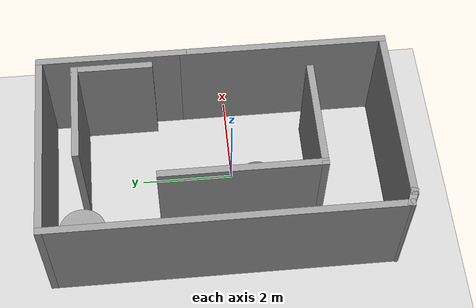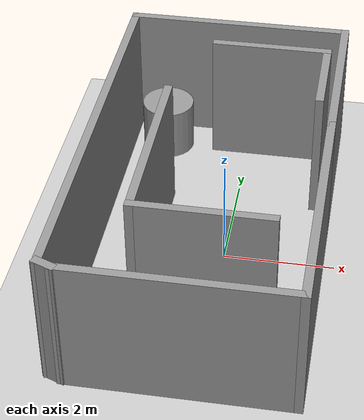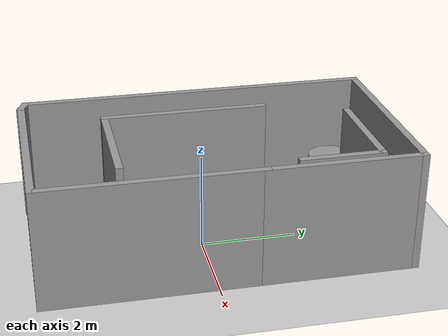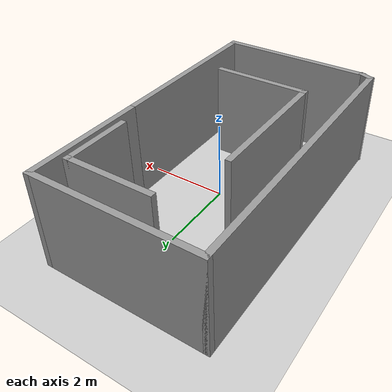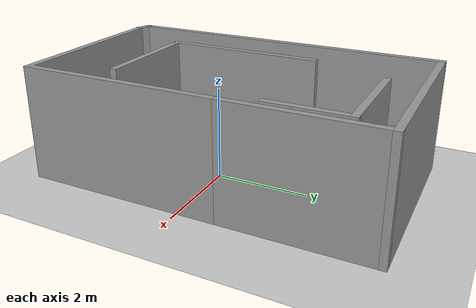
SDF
<sdf version="1.7">
 <world name="default">
  <light name="sun" type="directional">
   <pose>0 0 10 0 -0 0</pose>
   <diffuse>0.8 0.8 0.8 1</diffuse>
   <specular>0.2 0.2 0.2 1</specular>
   <attenuation>
    <range>1000</range>
    <constant>0.9</constant>
    <linear>0.01</linear>
    <quadratic>0.001</quadratic>
   </attenuation>
   <direction>-0.5 0.1 -0.9</direction>
   <spot><inner_angle>0</inner_angle><outer_angle>0</outer_angle><falloff>0</falloff></spot>
  </light>
  <model name="ground_plane">
   <static>1</static>
   <link name="link">
    <collision name="collision">
     <geometry><plane><normal>0 0 1</normal><size>100 100</size></plane></geometry>
     <surface>
      <contact><collide_bitmask>65535</collide_bitmask></contact>
      <friction><ode><mu>100</mu><mu2>50</mu2></ode></friction>
     </surface>
    </collision>
    <visual name="visual">
     <cast_shadows>0</cast_shadows>
     <geometry><plane><normal>0 0 1</normal><size>100 100</size></plane></geometry>
     <material>
      <script><uri>file://media/materials/scripts/gazebo.material</uri><name>Gazebo/Grey</name></script>
     </material>
    </visual>
   </link>
  </model>
  <gravity>0 0 -9.8</gravity>
  <magnetic_field>6e-06 2.3e-05 -4.2e-05</magnetic_field>
  <atmosphere type="adiabatic"/>
  <physics type="ode">
   <max_step_size>0.001</max_step_size>
   <real_time_factor>1</real_time_factor>
   <real_time_update_rate>1000</real_time_update_rate>
  </physics>
  <scene><ambient>0.4 0.4 0.4 1</ambient><background>0.7 0.7 0.7 1</background><shadows>1</shadows></scene>
  <audio><device>default</device></audio>
  <spherical_coordinates>
   <surface_model>EARTH_WGS84</surface_model>
   <latitude_deg>0</latitude_deg>
   <longitude_deg>0</longitude_deg>
   <elevation>0</elevation>
   <heading_deg>0</heading_deg>
  </spherical_coordinates>
  <model name="maze">
   <pose>-0.331245 0.273755 0 0 -0 0</pose>
   <link name="Wall_11">
    <collision name="Wall_11_Collision">
     <geometry><box><size>2.25 0.15 2.5</size></box></geometry>
     <pose>0 0 1.25 0 -0 0</pose>
    </collision>
    <visual name="Wall_11_Visual">
     <pose>0 0 1.25 0 -0 0</pose>
     <geometry><box><size>2.25 0.15 2.5</size></box></geometry>
     <material>
      <script><uri>file://media/materials/scripts/gazebo.material</uri><name>Gazebo/Grey</name></script>
      <ambient>1 1 1 1</ambient>
     </material>
     <meta><layer>0</layer></meta>
    </visual>
    <pose>0.739689 2.99063 0 0 -0 0</pose>
   </link>
   <link name="Wall_12">
    <collision name="Wall_12_Collision">
     <geometry><box><size>1.75 0.15 2.5</size></box></geometry>
     <pose>0 0 1.25 0 -0 0</pose>
    </collision>
    <visual name="Wall_12_Visual">
     <pose>0 0 1.25 0 -0 0</pose>
     <geometry><box><size>1.75 0.15 2.5</size></box></geometry>
     <material>
      <script><uri>file://media/materials/scripts/gazebo.material</uri><name>Gazebo/Grey</name></script>
      <ambient>1 1 1 1</ambient>
     </material>
     <meta><layer>0</layer></meta>
    </visual>
    <pose>1.78969 2.19063 0 0 -0 -1.5708</pose>
   </link>
   <link name="Wall_14">
    <collision name="Wall_14_Collision">
     <geometry><box><size>2.5 0.15 2.5</size></box></geometry>
     <pose>0 0 1.25 0 -0 0</pose>
    </collision>
    <visual name="Wall_14_Visual">
     <pose>0 0 1.25 0 -0 0</pose>
     <geometry><box><size>2.5 0.15 2.5</size></box></geometry>
     <material>
      <script><uri>file://media/materials/scripts/gazebo.material</uri><name>Gazebo/Grey</name></script>
      <ambient>1 1 1 1</ambient>
     </material>
     <meta><layer>0</layer></meta>
    </visual>
    <pose>0.226354 -2.05184 0 0 -0 3.14159</pose>
   </link>
   <link name="Wall_15">
    <collision name="Wall_15_Collision">
     <geometry><box><size>3.5 0.15 2.5</size></box></geometry>
     <pose>0 0 1.25 0 -0 0</pose>
    </collision>
    <visual name="Wall_15_Visual">
     <pose>0 0 1.25 0 -0 0</pose>
     <geometry><box><size>3.5 0.15 2.5</size></box></geometry>
     <material>
      <script><uri>file://media/materials/scripts/gazebo.material</uri><name>Gazebo/Grey</name></script>
      <ambient>1 1 1 1</ambient>
     </material>
     <meta><layer>0</layer></meta>
    </visual>
    <pose>-0.948646 -0.376841 0 0 -0 1.5708</pose>
   </link>
   <link name="Wall_3">
    <collision name="Wall_3_Collision">
     <geometry><box><size>4 0.15 2.5</size></box></geometry>
     <pose>0 0 1.25 0 -0 0</pose>
    </collision>
    <visual name="Wall_3_Visual">
     <pose>0 0 1.25 0 -0 0</pose>
     <geometry><box><size>4 0.15 2.5</size></box></geometry>
     <material>
      <script><uri>file://media/materials/scripts/gazebo.material</uri><name>Gazebo/Grey</name></script>
      <ambient>1 1 1 1</ambient>
     </material>
     <meta><layer>0</layer></meta>
    </visual>
    <pose>0.136245 -3.71375 0 0 -0 0</pose>
   </link>
   <link name="Wall_4">
    <collision name="Wall_4_Collision">
     <geometry><box><size>4.5 0.15 2.5</size></box></geometry>
     <pose>0 0 1.25 0 -0 0</pose>
    </collision>
    <visual name="Wall_4_Visual">
     <pose>0 0 1.25 0 -0 0</pose>
     <geometry><box><size>4.5 0.15 2.5</size></box></geometry>
     <material>
      <script><uri>file://media/materials/scripts/gazebo.material</uri><name>Gazebo/Grey</name></script>
      <ambient>1 1 1 1</ambient>
     </material>
     <meta><layer>0</layer></meta>
    </visual>
    <pose>2.06124 -1.53876 0 0 -0 1.5708</pose>
   </link>
   <link name="Wall_6">
    <collision name="Wall_6_Collision">
     <geometry><box><size>3.25 0.15 2.5</size></box></geometry>
     <pose>0 0 1.25 0 -0 0</pose>
    </collision>
    <visual name="Wall_6_Visual">
     <pose>0 0 1.25 0 -0 0</pose>
     <geometry><box><size>3.25 0.15 2.5</size></box></geometry>
     <material>
      <script><uri>file://media/materials/scripts/gazebo.material</uri><name>Gazebo/Grey</name></script>
      <ambient>1 1 1 1</ambient>
     </material>
     <meta><layer>0</layer></meta>
    </visual>
    <pose>2.06124 2.18624 0 0 -0 1.5708</pose>
   </link>
   <link name="Wall_7">
    <collision name="Wall_7_Collision">
     <geometry><box><size>4.25 0.15 2.5</size></box></geometry>
     <pose>0 0 1.25 0 -0 0</pose>
    </collision>
    <visual name="Wall_7_Visual">
     <pose>0 0 1.25 0 -0 0</pose>
     <geometry><box><size>4.25 0.15 2.5</size></box></geometry>
     <material>
      <script><uri>file://media/materials/scripts/gazebo.material</uri><name>Gazebo/Grey</name></script>
      <ambient>1 1 1 1</ambient>
     </material>
     <meta><layer>0</layer></meta>
    </visual>
    <pose>0.011245 3.73624 0 0 -0 3.14159</pose>
   </link>
   <link name="Wall_8">
    <collision name="Wall_8_Collision">
     <geometry><box><size>7.5 0.15 2.5</size></box></geometry>
     <pose>0 0 1.25 0 -0 0</pose>
    </collision>
    <visual name="Wall_8_Visual">
     <pose>0 0 1.25 0 -0 0</pose>
     <geometry><box><size>7.5 0.15 2.5</size></box></geometry>
     <material>
      <script><uri>file://media/materials/scripts/gazebo.material</uri><name>Gazebo/Grey</name></script>
      <ambient>1 1 1 1</ambient>
     </material>
     <meta><layer>0</layer></meta>
    </visual>
    <pose>-2.03876 0.061245 0 0 -0 -1.5708</pose>
   </link>
   <link name="Wall_9">
    <collision name="Wall_9_Collision">
     <geometry><box><size>0.419258 0.15 2.5</size></box></geometry>
     <pose>0 0 1.25 0 -0 0</pose>
    </collision>
    <visual name="Wall_9_Visual">
     <pose>0 0 1.25 0 -0 0</pose>
     <geometry><box><size>0.419258 0.15 2.5</size></box></geometry>
     <material>
      <script><uri>file://media/materials/scripts/gazebo.material</uri><name>Gazebo/Grey</name></script>
      <ambient>1 1 1 1</ambient>
     </material>
     <meta><layer>0</layer></meta>
    </visual>
    <pose>-1.91376 -3.66376 0 0 -0 -0.380506</pose>
   </link>
   <static>1</static>
  </model>
  <model name="unit_sphere">
   <pose>-0.536762 -0.514936 0.5 0 -0 0</pose>
   <link name="link">
    <inertial>
     <mass>1</mass>
     <inertia><ixx>0.1</ixx><ixy>0</ixy><ixz>0</ixz><iyy>0.1</iyy><iyz>0</iyz><izz>0.1</izz></inertia>
    </inertial>
    <collision name="collision"><geometry><sphere><radius>0.5</radius></sphere></geometry></collision>
    <visual name="visual">
     <geometry><sphere><radius>0.5</radius></sphere></geometry>
     <material>
      <script><name>Gazebo/Grey</name><uri>file://media/materials/scripts/gazebo.material</uri></script>
     </material>
    </visual>
   </link>
  </model>
  <model name="unit_cylinder">
   <pose>-1.62524 3.30469 0.499997 3e-06 4e-06 -0</pose>
   <link name="link">
    <inertial>
     <mass>1</mass>
     <inertia><ixx>0.145833</ixx><ixy>0</ixy><ixz>0</ixz><iyy>0.145833</iyy><iyz>0</iyz><izz>0.125</izz></inertia>
    </inertial>
    <collision name="collision">
     <geometry><cylinder><radius>0.5</radius><length>1</length></cylinder></geometry>
    </collision>
    <visual name="visual">
     <geometry><cylinder><radius>0.5</radius><length>1</length></cylinder></geometry>
     <material>
      <script><name>Gazebo/Grey</name><uri>file://media/materials/scripts/gazebo.material</uri></script>
     </material>
    </visual>
   </link>
  </model>
 </world>
</sdf>
